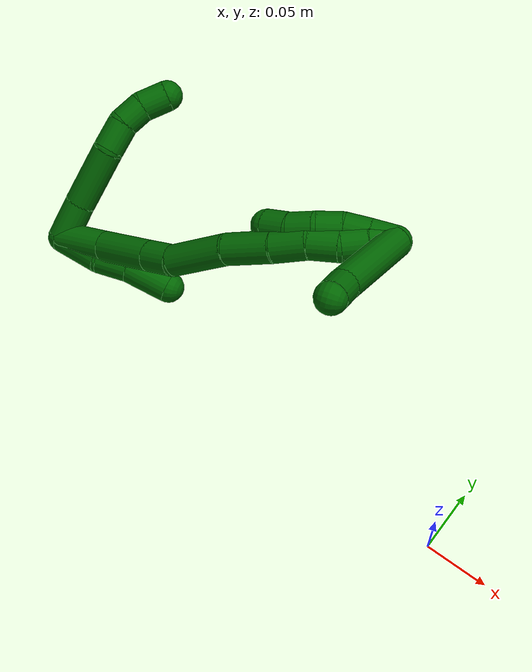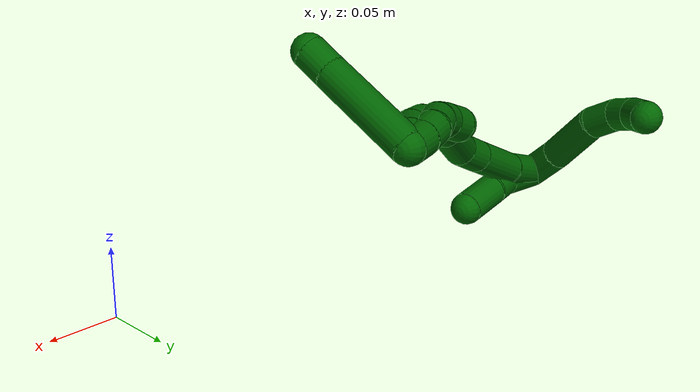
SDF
<sdf version="1.7">
 <world name="default">
  <model name="6">
   <static>0</static>
   <link name="6">
    <collision name="collision-cylinder-e_1_2_8">
     <pose>0.015543 -0.003151 0.003655 0.711426 1.26977 0.534253</pose>
     <geometry><cylinder><radius>0.0125</radius><length>0.032549</length></cylinder></geometry>
     <surface>
      <friction><ode><mu>1.16</mu><mu2>1.16</mu2><slip1>0</slip1><slip2>0</slip2></ode></friction>
      <contact><ode><kp>1e+06</kp><kd>1</kd><max_vel>0</max_vel><min_depth>0.001</min_depth></ode></contact>
     </surface>
    </collision>
    <visual name="visual-cylinder-e_1_2_8">
     <pose>0.015543 -0.003151 0.003655 0.711426 1.26977 0.534253</pose>
     <geometry><cylinder><radius>0.0125</radius><length>0.032549</length></cylinder></geometry>
     <material><ambient>0 0.392157 0.003922 1</ambient></material>
    </visual>
    <collision name="collision-cylinder-e_2_8_9">
     <pose>0.055482 -0.009366 0.014247 0.415952 1.26941 0.308313</pose>
     <geometry><cylinder><radius>0.0125</radius><length>0.051097</length></cylinder></geometry>
     <surface>
      <friction><ode><mu>1.16</mu><mu2>1.16</mu2><slip1>0</slip1><slip2>0</slip2></ode></friction>
      <contact><ode><kp>1e+06</kp><kd>1</kd><max_vel>0</max_vel><min_depth>0.001</min_depth></ode></contact>
     </surface>
    </collision>
    <visual name="visual-cylinder-e_2_8_9">
     <pose>0.055482 -0.009366 0.014247 0.415952 1.26941 0.308313</pose>
     <geometry><cylinder><radius>0.0125</radius><length>0.051097</length></cylinder></geometry>
     <material><ambient>0 0.392157 0.003922 1</ambient></material>
    </visual>
    <collision name="collision-cylinder-e_3_9_10">
     <pose>0.090728 -0.01748 0.023559 1.13123 1.09568 0.739047</pose>
     <geometry><cylinder><radius>0.0125</radius><length>0.0244</length></cylinder></geometry>
     <surface>
      <friction><ode><mu>1.16</mu><mu2>1.16</mu2><slip1>0</slip1><slip2>0</slip2></ode></friction>
      <contact><ode><kp>1e+06</kp><kd>1</kd><max_vel>0</max_vel><min_depth>0.001</min_depth></ode></contact>
     </surface>
    </collision>
    <visual name="visual-cylinder-e_3_9_10">
     <pose>0.090728 -0.01748 0.023559 1.13123 1.09568 0.739047</pose>
     <geometry><cylinder><radius>0.0125</radius><length>0.0244</length></cylinder></geometry>
     <material><ambient>0 0.392157 0.003922 1</ambient></material>
    </visual>
    <collision name="collision-cylinder-e_4_10_11">
     <pose>0.108752 -0.027812 0.030563 0.851154 0.796109 0.37669</pose>
     <geometry><cylinder><radius>0.0125</radius><length>0.02008</length></cylinder></geometry>
     <surface>
      <friction><ode><mu>1.16</mu><mu2>1.16</mu2><slip1>0</slip1><slip2>0</slip2></ode></friction>
      <contact><ode><kp>1e+06</kp><kd>1</kd><max_vel>0</max_vel><min_depth>0.001</min_depth></ode></contact>
     </surface>
    </collision>
    <visual name="visual-cylinder-e_4_10_11">
     <pose>0.108752 -0.027812 0.030563 0.851154 0.796109 0.37669</pose>
     <geometry><cylinder><radius>0.0125</radius><length>0.02008</length></cylinder></geometry>
     <material><ambient>0 0.392157 0.003922 1</ambient></material>
    </visual>
    <collision name="collision-cylinder-e_5_11_6">
     <pose>0.121741 -0.038064 0.043009 0.566347 0.560485 0.167116</pose>
     <geometry><cylinder><radius>0.0125</radius><length>0.021874</length></cylinder></geometry>
     <surface>
      <friction><ode><mu>1.16</mu><mu2>1.16</mu2><slip1>0</slip1><slip2>0</slip2></ode></friction>
      <contact><ode><kp>1e+06</kp><kd>1</kd><max_vel>0</max_vel><min_depth>0.001</min_depth></ode></contact>
     </surface>
    </collision>
    <visual name="visual-cylinder-e_5_11_6">
     <pose>0.121741 -0.038064 0.043009 0.566347 0.560485 0.167116</pose>
     <geometry><cylinder><radius>0.0125</radius><length>0.021874</length></cylinder></geometry>
     <material><ambient>0 0.392157 0.003922 1</ambient></material>
    </visual>
    <collision name="collision-cylinder-e_1_2_12">
     <pose>-0.002153 0.003118 0.018592 -0.166165 -0.113696 0.009478</pose>
     <geometry><cylinder><radius>0.0125</radius><length>0.037948</length></cylinder></geometry>
     <surface>
      <friction><ode><mu>1.16</mu><mu2>1.16</mu2><slip1>0</slip1><slip2>0</slip2></ode></friction>
      <contact><ode><kp>1e+06</kp><kd>1</kd><max_vel>0</max_vel><min_depth>0.001</min_depth></ode></contact>
     </surface>
    </collision>
    <visual name="visual-cylinder-e_1_2_12">
     <pose>-0.002153 0.003118 0.018592 -0.166165 -0.113696 0.009478</pose>
     <geometry><cylinder><radius>0.0125</radius><length>0.037948</length></cylinder></geometry>
     <material><ambient>0 0.392157 0.003922 1</ambient></material>
    </visual>
    <collision name="collision-cylinder-e_2_12_13">
     <pose>-0.004295 0.005158 0.050209 0.082558 0.000796 3.3e-05</pose>
     <geometry><cylinder><radius>0.0125</radius><length>0.02614</length></cylinder></geometry>
     <surface>
      <friction><ode><mu>1.16</mu><mu2>1.16</mu2><slip1>0</slip1><slip2>0</slip2></ode></friction>
      <contact><ode><kp>1e+06</kp><kd>1</kd><max_vel>0</max_vel><min_depth>0.001</min_depth></ode></contact>
     </surface>
    </collision>
    <visual name="visual-cylinder-e_2_12_13">
     <pose>-0.004295 0.005158 0.050209 0.082558 0.000796 3.3e-05</pose>
     <geometry><cylinder><radius>0.0125</radius><length>0.02614</length></cylinder></geometry>
     <material><ambient>0 0.392157 0.003922 1</ambient></material>
    </visual>
    <collision name="collision-cylinder-e_3_13_5">
     <pose>-0.007451 0.003266 0.08089 0.046092 -0.177255 -0.004096</pose>
     <geometry><cylinder><radius>0.0125</radius><length>0.035912</length></cylinder></geometry>
     <surface>
      <friction><ode><mu>1.16</mu><mu2>1.16</mu2><slip1>0</slip1><slip2>0</slip2></ode></friction>
      <contact><ode><kp>1e+06</kp><kd>1</kd><max_vel>0</max_vel><min_depth>0.001</min_depth></ode></contact>
     </surface>
    </collision>
    <visual name="visual-cylinder-e_3_13_5">
     <pose>-0.007451 0.003266 0.08089 0.046092 -0.177255 -0.004096</pose>
     <geometry><cylinder><radius>0.0125</radius><length>0.035912</length></cylinder></geometry>
     <material><ambient>0 0.392157 0.003922 1</ambient></material>
    </visual>
    <collision name="collision-cylinder-e_1_2_14">
     <pose>0.004325 0.004652 0.0208 -0.220049 0.200183 -0.022188</pose>
     <geometry><cylinder><radius>0.0125</radius><length>0.043496</length></cylinder></geometry>
     <surface>
      <friction><ode><mu>1.16</mu><mu2>1.16</mu2><slip1>0</slip1><slip2>0</slip2></ode></friction>
      <contact><ode><kp>1e+06</kp><kd>1</kd><max_vel>0</max_vel><min_depth>0.001</min_depth></ode></contact>
     </surface>
    </collision>
    <visual name="visual-cylinder-e_1_2_14">
     <pose>0.004325 0.004652 0.0208 -0.220049 0.200183 -0.022188</pose>
     <geometry><cylinder><radius>0.0125</radius><length>0.043496</length></cylinder></geometry>
     <material><ambient>0 0.392157 0.003922 1</ambient></material>
    </visual>
    <collision name="collision-cylinder-e_2_14_15">
     <pose>0.014859 0.017667 0.064259 -0.353533 0.251672 -0.045187</pose>
     <geometry><cylinder><radius>0.0125</radius><length>0.049877</length></cylinder></geometry>
     <surface>
      <friction><ode><mu>1.16</mu><mu2>1.16</mu2><slip1>0</slip1><slip2>0</slip2></ode></friction>
      <contact><ode><kp>1e+06</kp><kd>1</kd><max_vel>0</max_vel><min_depth>0.001</min_depth></ode></contact>
     </surface>
    </collision>
    <visual name="visual-cylinder-e_2_14_15">
     <pose>0.014859 0.017667 0.064259 -0.353533 0.251672 -0.045187</pose>
     <geometry><cylinder><radius>0.0125</radius><length>0.049877</length></cylinder></geometry>
     <material><ambient>0 0.392157 0.003922 1</ambient></material>
    </visual>
    <collision name="collision-cylinder-e_3_15_16">
     <pose>0.024303 0.030307 0.098086 -0.365835 0.264027 -0.049117</pose>
     <geometry><cylinder><radius>0.0125</radius><length>0.024777</length></cylinder></geometry>
     <surface>
      <friction><ode><mu>1.16</mu><mu2>1.16</mu2><slip1>0</slip1><slip2>0</slip2></ode></friction>
      <contact><ode><kp>1e+06</kp><kd>1</kd><max_vel>0</max_vel><min_depth>0.001</min_depth></ode></contact>
     </surface>
    </collision>
    <visual name="visual-cylinder-e_3_15_16">
     <pose>0.024303 0.030307 0.098086 -0.365835 0.264027 -0.049117</pose>
     <geometry><cylinder><radius>0.0125</radius><length>0.024777</length></cylinder></geometry>
     <material><ambient>0 0.392157 0.003922 1</ambient></material>
    </visual>
    <collision name="collision-cylinder-e_4_16_17">
     <pose>0.040907 0.038639 0.130687 -0.186918 0.54989 -0.052869</pose>
     <geometry><cylinder><radius>0.0125</radius><length>0.051171</length></cylinder></geometry>
     <surface>
      <friction><ode><mu>1.16</mu><mu2>1.16</mu2><slip1>0</slip1><slip2>0</slip2></ode></friction>
      <contact><ode><kp>1e+06</kp><kd>1</kd><max_vel>0</max_vel><min_depth>0.001</min_depth></ode></contact>
     </surface>
    </collision>
    <visual name="visual-cylinder-e_4_16_17">
     <pose>0.040907 0.038639 0.130687 -0.186918 0.54989 -0.052869</pose>
     <geometry><cylinder><radius>0.0125</radius><length>0.051171</length></cylinder></geometry>
     <material><ambient>0 0.392157 0.003922 1</ambient></material>
    </visual>
    <collision name="collision-cylinder-e_5_17_18">
     <pose>0.061705 0.044151 0.169898 -0.081849 0.394609 -0.016371</pose>
     <geometry><cylinder><radius>0.0125</radius><length>0.038642</length></cylinder></geometry>
     <surface>
      <friction><ode><mu>1.16</mu><mu2>1.16</mu2><slip1>0</slip1><slip2>0</slip2></ode></friction>
      <contact><ode><kp>1e+06</kp><kd>1</kd><max_vel>0</max_vel><min_depth>0.001</min_depth></ode></contact>
     </surface>
    </collision>
    <visual name="visual-cylinder-e_5_17_18">
     <pose>0.061705 0.044151 0.169898 -0.081849 0.394609 -0.016371</pose>
     <geometry><cylinder><radius>0.0125</radius><length>0.038642</length></cylinder></geometry>
     <material><ambient>0 0.392157 0.003922 1</ambient></material>
    </visual>
    <collision name="collision-cylinder-e_6_18_19">
     <pose>0.074721 0.045023 0.200446 0.045832 0.412033 0.00958</pose>
     <geometry><cylinder><radius>0.0125</radius><length>0.027905</length></cylinder></geometry>
     <surface>
      <friction><ode><mu>1.16</mu><mu2>1.16</mu2><slip1>0</slip1><slip2>0</slip2></ode></friction>
      <contact><ode><kp>1e+06</kp><kd>1</kd><max_vel>0</max_vel><min_depth>0.001</min_depth></ode></contact>
     </surface>
    </collision>
    <visual name="visual-cylinder-e_6_18_19">
     <pose>0.074721 0.045023 0.200446 0.045832 0.412033 0.00958</pose>
     <geometry><cylinder><radius>0.0125</radius><length>0.027905</length></cylinder></geometry>
     <material><ambient>0 0.392157 0.003922 1</ambient></material>
    </visual>
    <collision name="collision-cylinder-e_7_19_20">
     <pose>0.082664 0.043189 0.224545 0.109747 0.20381 0.011234</pose>
     <geometry><cylinder><radius>0.0125</radius><length>0.023274</length></cylinder></geometry>
     <surface>
      <friction><ode><mu>1.16</mu><mu2>1.16</mu2><slip1>0</slip1><slip2>0</slip2></ode></friction>
      <contact><ode><kp>1e+06</kp><kd>1</kd><max_vel>0</max_vel><min_depth>0.001</min_depth></ode></contact>
     </surface>
    </collision>
    <visual name="visual-cylinder-e_7_19_20">
     <pose>0.082664 0.043189 0.224545 0.109747 0.20381 0.011234</pose>
     <geometry><cylinder><radius>0.0125</radius><length>0.023274</length></cylinder></geometry>
     <material><ambient>0 0.392157 0.003922 1</ambient></material>
    </visual>
    <collision name="collision-cylinder-e_8_20_21">
     <pose>0.088007 0.037941 0.244697 0.425607 0.299144 0.065101</pose>
     <geometry><cylinder><radius>0.0125</radius><length>0.020277</length></cylinder></geometry>
     <surface>
      <friction><ode><mu>1.16</mu><mu2>1.16</mu2><slip1>0</slip1><slip2>0</slip2></ode></friction>
      <contact><ode><kp>1e+06</kp><kd>1</kd><max_vel>0</max_vel><min_depth>0.001</min_depth></ode></contact>
     </surface>
    </collision>
    <visual name="visual-cylinder-e_8_20_21">
     <pose>0.088007 0.037941 0.244697 0.425607 0.299144 0.065101</pose>
     <geometry><cylinder><radius>0.0125</radius><length>0.020277</length></cylinder></geometry>
     <material><ambient>0 0.392157 0.003922 1</ambient></material>
    </visual>
    <collision name="collision-cylinder-e_9_21_1">
     <pose>0.093157 0.029873 0.262722 0.416273 0.211679 0.044866</pose>
     <geometry><cylinder><radius>0.0125</radius><length>0.02058</length></cylinder></geometry>
     <surface>
      <friction><ode><mu>1.16</mu><mu2>1.16</mu2><slip1>0</slip1><slip2>0</slip2></ode></friction>
      <contact><ode><kp>1e+06</kp><kd>1</kd><max_vel>0</max_vel><min_depth>0.001</min_depth></ode></contact>
     </surface>
    </collision>
    <visual name="visual-cylinder-e_9_21_1">
     <pose>0.093157 0.029873 0.262722 0.416273 0.211679 0.044866</pose>
     <geometry><cylinder><radius>0.0125</radius><length>0.02058</length></cylinder></geometry>
     <material><ambient>0 0.392157 0.003922 1</ambient></material>
    </visual>
    <collision name="collision-cylinder-e_1_1_22">
     <pose>0.088464 0.063658 0.264758 -1.75787 -0.176101 0.212312</pose>
     <geometry><cylinder><radius>0.0125</radius><length>0.078261</length></cylinder></geometry>
     <surface>
      <friction><ode><mu>1.16</mu><mu2>1.16</mu2><slip1>0</slip1><slip2>0</slip2></ode></friction>
      <contact><ode><kp>1e+06</kp><kd>1</kd><max_vel>0</max_vel><min_depth>0.001</min_depth></ode></contact>
     </surface>
    </collision>
    <visual name="visual-cylinder-e_1_1_22">
     <pose>0.088464 0.063658 0.264758 -1.75787 -0.176101 0.212312</pose>
     <geometry><cylinder><radius>0.0125</radius><length>0.078261</length></cylinder></geometry>
     <material><ambient>0 0.392157 0.003922 1</ambient></material>
    </visual>
    <collision name="collision-cylinder-e_2_22_4">
     <pose>0.080578 0.112307 0.256864 -1.63818 -0.094949 0.101561</pose>
     <geometry><cylinder><radius>0.0125</radius><length>0.021739</length></cylinder></geometry>
     <surface>
      <friction><ode><mu>1.16</mu><mu2>1.16</mu2><slip1>0</slip1><slip2>0</slip2></ode></friction>
      <contact><ode><kp>1e+06</kp><kd>1</kd><max_vel>0</max_vel><min_depth>0.001</min_depth></ode></contact>
     </surface>
    </collision>
    <visual name="visual-cylinder-e_2_22_4">
     <pose>0.080578 0.112307 0.256864 -1.63818 -0.094949 0.101561</pose>
     <geometry><cylinder><radius>0.0125</radius><length>0.021739</length></cylinder></geometry>
     <material><ambient>0 0.392157 0.003922 1</ambient></material>
    </visual>
    <collision name="collision-cylinder-e_1_1_23">
     <pose>0.095169 0.026774 0.261971 -3.04455 -0.01498 0.306079</pose>
     <geometry><cylinder><radius>0.0125</radius><length>0.02</length></cylinder></geometry>
     <surface>
      <friction><ode><mu>1.16</mu><mu2>1.16</mu2><slip1>0</slip1><slip2>0</slip2></ode></friction>
      <contact><ode><kp>1e+06</kp><kd>1</kd><max_vel>0</max_vel><min_depth>0.001</min_depth></ode></contact>
     </surface>
    </collision>
    <visual name="visual-cylinder-e_1_1_23">
     <pose>0.095169 0.026774 0.261971 -3.04455 -0.01498 0.306079</pose>
     <geometry><cylinder><radius>0.0125</radius><length>0.02</length></cylinder></geometry>
     <material><ambient>0 0.392157 0.003922 1</ambient></material>
    </visual>
    <collision name="collision-cylinder-e_2_23_24">
     <pose>0.09492 0.029604 0.242195 -2.95436 -0.00993 0.10566</pose>
     <geometry><cylinder><radius>0.0125</radius><length>0.02</length></cylinder></geometry>
     <surface>
      <friction><ode><mu>1.16</mu><mu2>1.16</mu2><slip1>0</slip1><slip2>0</slip2></ode></friction>
      <contact><ode><kp>1e+06</kp><kd>1</kd><max_vel>0</max_vel><min_depth>0.001</min_depth></ode></contact>
     </surface>
    </collision>
    <visual name="visual-cylinder-e_2_23_24">
     <pose>0.09492 0.029604 0.242195 -2.95436 -0.00993 0.10566</pose>
     <geometry><cylinder><radius>0.0125</radius><length>0.02</length></cylinder></geometry>
     <material><ambient>0 0.392157 0.003922 1</ambient></material>
    </visual>
    <collision name="collision-cylinder-e_3_24_25">
     <pose>0.092769 0.034283 0.222997 -2.84957 -0.206641 1.22828</pose>
     <geometry><cylinder><radius>0.0125</radius><length>0.02</length></cylinder></geometry>
     <surface>
      <friction><ode><mu>1.16</mu><mu2>1.16</mu2><slip1>0</slip1><slip2>0</slip2></ode></friction>
      <contact><ode><kp>1e+06</kp><kd>1</kd><max_vel>0</max_vel><min_depth>0.001</min_depth></ode></contact>
     </surface>
    </collision>
    <visual name="visual-cylinder-e_3_24_25">
     <pose>0.092769 0.034283 0.222997 -2.84957 -0.206641 1.22828</pose>
     <geometry><cylinder><radius>0.0125</radius><length>0.02</length></cylinder></geometry>
     <material><ambient>0 0.392157 0.003922 1</ambient></material>
    </visual>
    <collision name="collision-cylinder-e_4_25_26">
     <pose>0.087299 0.037234 0.204227 -3.12743 -0.34891 3.06128</pose>
     <geometry><cylinder><radius>0.0125</radius><length>0.02</length></cylinder></geometry>
     <surface>
      <friction><ode><mu>1.16</mu><mu2>1.16</mu2><slip1>0</slip1><slip2>0</slip2></ode></friction>
      <contact><ode><kp>1e+06</kp><kd>1</kd><max_vel>0</max_vel><min_depth>0.001</min_depth></ode></contact>
     </surface>
    </collision>
    <visual name="visual-cylinder-e_4_25_26">
     <pose>0.087299 0.037234 0.204227 -3.12743 -0.34891 3.06128</pose>
     <geometry><cylinder><radius>0.0125</radius><length>0.02</length></cylinder></geometry>
     <material><ambient>0 0.392157 0.003922 1</ambient></material>
    </visual>
    <collision name="collision-cylinder-e_5_26_3">
     <pose>0.081353 0.03503 0.185442 2.89766 -0.255447 -1.61737</pose>
     <geometry><cylinder><radius>0.0125</radius><length>0.02</length></cylinder></geometry>
     <surface>
      <friction><ode><mu>1.16</mu><mu2>1.16</mu2><slip1>0</slip1><slip2>0</slip2></ode></friction>
      <contact><ode><kp>1e+06</kp><kd>1</kd><max_vel>0</max_vel><min_depth>0.001</min_depth></ode></contact>
     </surface>
    </collision>
    <visual name="visual-cylinder-e_5_26_3">
     <pose>0.081353 0.03503 0.185442 2.89766 -0.255447 -1.61737</pose>
     <geometry><cylinder><radius>0.0125</radius><length>0.02</length></cylinder></geometry>
     <material><ambient>0 0.392157 0.003922 1</ambient></material>
    </visual>
    <collision name="collision-sphere-3">
     <pose>0.078826 0.032693 0.176053 0 -0 0</pose>
     <geometry><sphere><radius>0.0125</radius></sphere></geometry>
     <surface>
      <friction><ode><mu>1.16</mu><mu2>1.16</mu2><slip1>0</slip1><slip2>0</slip2></ode></friction>
      <contact><ode><kp>1e+06</kp><kd>1</kd><max_vel>0</max_vel><min_depth>0.001</min_depth></ode></contact>
     </surface>
    </collision>
    <visual name="visual-sphere-3">
     <pose>0.078826 0.032693 0.176053 0 -0 0</pose>
     <geometry><sphere><radius>0.0125</radius></sphere></geometry>
     <material><ambient>0 0.392157 0.003922 1</ambient></material>
    </visual>
    <collision name="collision-sphere-26">
     <pose>0.08388 0.037367 0.194831 0 -0 0</pose>
     <geometry><sphere><radius>0.0125</radius></sphere></geometry>
     <surface>
      <friction><ode><mu>1.16</mu><mu2>1.16</mu2><slip1>0</slip1><slip2>0</slip2></ode></friction>
      <contact><ode><kp>1e+06</kp><kd>1</kd><max_vel>0</max_vel><min_depth>0.001</min_depth></ode></contact>
     </surface>
    </collision>
    <visual name="visual-sphere-26">
     <pose>0.08388 0.037367 0.194831 0 -0 0</pose>
     <geometry><sphere><radius>0.0125</radius></sphere></geometry>
     <material><ambient>0 0.392157 0.003922 1</ambient></material>
    </visual>
    <collision name="collision-sphere-25">
     <pose>0.090717 0.037101 0.213624 0 -0 0</pose>
     <geometry><sphere><radius>0.0125</radius></sphere></geometry>
     <surface>
      <friction><ode><mu>1.16</mu><mu2>1.16</mu2><slip1>0</slip1><slip2>0</slip2></ode></friction>
      <contact><ode><kp>1e+06</kp><kd>1</kd><max_vel>0</max_vel><min_depth>0.001</min_depth></ode></contact>
     </surface>
    </collision>
    <visual name="visual-sphere-25">
     <pose>0.090717 0.037101 0.213624 0 -0 0</pose>
     <geometry><sphere><radius>0.0125</radius></sphere></geometry>
     <material><ambient>0 0.392157 0.003922 1</ambient></material>
    </visual>
    <collision name="collision-sphere-24">
     <pose>0.094821 0.031465 0.23237 0 -0 0</pose>
     <geometry><sphere><radius>0.0125</radius></sphere></geometry>
     <surface>
      <friction><ode><mu>1.16</mu><mu2>1.16</mu2><slip1>0</slip1><slip2>0</slip2></ode></friction>
      <contact><ode><kp>1e+06</kp><kd>1</kd><max_vel>0</max_vel><min_depth>0.001</min_depth></ode></contact>
     </surface>
    </collision>
    <visual name="visual-sphere-24">
     <pose>0.094821 0.031465 0.23237 0 -0 0</pose>
     <geometry><sphere><radius>0.0125</radius></sphere></geometry>
     <material><ambient>0 0.392157 0.003922 1</ambient></material>
    </visual>
    <collision name="collision-sphere-23">
     <pose>0.095019 0.027743 0.252019 0 -0 0</pose>
     <geometry><sphere><radius>0.0125</radius></sphere></geometry>
     <surface>
      <friction><ode><mu>1.16</mu><mu2>1.16</mu2><slip1>0</slip1><slip2>0</slip2></ode></friction>
      <contact><ode><kp>1e+06</kp><kd>1</kd><max_vel>0</max_vel><min_depth>0.001</min_depth></ode></contact>
     </surface>
    </collision>
    <visual name="visual-sphere-23">
     <pose>0.095019 0.027743 0.252019 0 -0 0</pose>
     <geometry><sphere><radius>0.0125</radius></sphere></geometry>
     <material><ambient>0 0.392157 0.003922 1</ambient></material>
    </visual>
    <collision name="collision-sphere-4">
     <pose>0.079547 0.123103 0.256136 0 -0 0</pose>
     <geometry><sphere><radius>0.0125</radius></sphere></geometry>
     <surface>
      <friction><ode><mu>1.16</mu><mu2>1.16</mu2><slip1>0</slip1><slip2>0</slip2></ode></friction>
      <contact><ode><kp>1e+06</kp><kd>1</kd><max_vel>0</max_vel><min_depth>0.001</min_depth></ode></contact>
     </surface>
    </collision>
    <visual name="visual-sphere-4">
     <pose>0.079547 0.123103 0.256136 0 -0 0</pose>
     <geometry><sphere><radius>0.0125</radius></sphere></geometry>
     <material><ambient>0 0.392157 0.003922 1</ambient></material>
    </visual>
    <collision name="collision-sphere-22">
     <pose>0.081608 0.101511 0.257593 0 -0 0</pose>
     <geometry><sphere><radius>0.0125</radius></sphere></geometry>
     <surface>
      <friction><ode><mu>1.16</mu><mu2>1.16</mu2><slip1>0</slip1><slip2>0</slip2></ode></friction>
      <contact><ode><kp>1e+06</kp><kd>1</kd><max_vel>0</max_vel><min_depth>0.001</min_depth></ode></contact>
     </surface>
    </collision>
    <visual name="visual-sphere-22">
     <pose>0.081608 0.101511 0.257593 0 -0 0</pose>
     <geometry><sphere><radius>0.0125</radius></sphere></geometry>
     <material><ambient>0 0.392157 0.003922 1</ambient></material>
    </visual>
    <collision name="collision-sphere-1">
     <pose>0.095319 0.025805 0.271923 0 -0 0</pose>
     <geometry><sphere><radius>0.0125</radius></sphere></geometry>
     <surface>
      <friction><ode><mu>1.16</mu><mu2>1.16</mu2><slip1>0</slip1><slip2>0</slip2></ode></friction>
      <contact><ode><kp>1e+06</kp><kd>1</kd><max_vel>0</max_vel><min_depth>0.001</min_depth></ode></contact>
     </surface>
    </collision>
    <visual name="visual-sphere-1">
     <pose>0.095319 0.025805 0.271923 0 -0 0</pose>
     <geometry><sphere><radius>0.0125</radius></sphere></geometry>
     <material><ambient>0 0.392157 0.003922 1</ambient></material>
    </visual>
    <collision name="collision-sphere-21">
     <pose>0.090995 0.033941 0.253521 0 -0 0</pose>
     <geometry><sphere><radius>0.0125</radius></sphere></geometry>
     <surface>
      <friction><ode><mu>1.16</mu><mu2>1.16</mu2><slip1>0</slip1><slip2>0</slip2></ode></friction>
      <contact><ode><kp>1e+06</kp><kd>1</kd><max_vel>0</max_vel><min_depth>0.001</min_depth></ode></contact>
     </surface>
    </collision>
    <visual name="visual-sphere-21">
     <pose>0.090995 0.033941 0.253521 0 -0 0</pose>
     <geometry><sphere><radius>0.0125</radius></sphere></geometry>
     <material><ambient>0 0.392157 0.003922 1</ambient></material>
    </visual>
    <collision name="collision-sphere-6">
     <pose>0.127555 -0.043034 0.050826 0 -0 0</pose>
     <geometry><sphere><radius>0.0125</radius></sphere></geometry>
     <surface>
      <friction><ode><mu>1.16</mu><mu2>1.16</mu2><slip1>0</slip1><slip2>0</slip2></ode></friction>
      <contact><ode><kp>1e+06</kp><kd>1</kd><max_vel>0</max_vel><min_depth>0.001</min_depth></ode></contact>
     </surface>
    </collision>
    <visual name="visual-sphere-6">
     <pose>0.127555 -0.043034 0.050826 0 -0 0</pose>
     <geometry><sphere><radius>0.0125</radius></sphere></geometry>
     <material><ambient>0 0.392157 0.003922 1</ambient></material>
    </visual>
    <collision name="collision-sphere-11">
     <pose>0.115927 -0.033094 0.035192 0 -0 0</pose>
     <geometry><sphere><radius>0.0125</radius></sphere></geometry>
     <surface>
      <friction><ode><mu>1.16</mu><mu2>1.16</mu2><slip1>0</slip1><slip2>0</slip2></ode></friction>
      <contact><ode><kp>1e+06</kp><kd>1</kd><max_vel>0</max_vel><min_depth>0.001</min_depth></ode></contact>
     </surface>
    </collision>
    <visual name="visual-sphere-11">
     <pose>0.115927 -0.033094 0.035192 0 -0 0</pose>
     <geometry><sphere><radius>0.0125</radius></sphere></geometry>
     <material><ambient>0 0.392157 0.003922 1</ambient></material>
    </visual>
    <collision name="collision-sphere-10">
     <pose>0.101577 -0.022531 0.025934 0 -0 0</pose>
     <geometry><sphere><radius>0.0125</radius></sphere></geometry>
     <surface>
      <friction><ode><mu>1.16</mu><mu2>1.16</mu2><slip1>0</slip1><slip2>0</slip2></ode></friction>
      <contact><ode><kp>1e+06</kp><kd>1</kd><max_vel>0</max_vel><min_depth>0.001</min_depth></ode></contact>
     </surface>
    </collision>
    <visual name="visual-sphere-10">
     <pose>0.101577 -0.022531 0.025934 0 -0 0</pose>
     <geometry><sphere><radius>0.0125</radius></sphere></geometry>
     <material><ambient>0 0.392157 0.003922 1</ambient></material>
    </visual>
    <collision name="collision-sphere-9">
     <pose>0.079879 -0.01243 0.021184 0 -0 0</pose>
     <geometry><sphere><radius>0.0125</radius></sphere></geometry>
     <surface>
      <friction><ode><mu>1.16</mu><mu2>1.16</mu2><slip1>0</slip1><slip2>0</slip2></ode></friction>
      <contact><ode><kp>1e+06</kp><kd>1</kd><max_vel>0</max_vel><min_depth>0.001</min_depth></ode></contact>
     </surface>
    </collision>
    <visual name="visual-sphere-9">
     <pose>0.079879 -0.01243 0.021184 0 -0 0</pose>
     <geometry><sphere><radius>0.0125</radius></sphere></geometry>
     <material><ambient>0 0.392157 0.003922 1</ambient></material>
    </visual>
    <collision name="collision-sphere-2">
     <geometry><sphere><radius>0.0125</radius></sphere></geometry>
     <surface>
      <friction><ode><mu>1.16</mu><mu2>1.16</mu2><slip1>0</slip1><slip2>0</slip2></ode></friction>
      <contact><ode><kp>1e+06</kp><kd>1</kd><max_vel>0</max_vel><min_depth>0.001</min_depth></ode></contact>
     </surface>
    </collision>
    <visual name="visual-sphere-2">
     <geometry><sphere><radius>0.0125</radius></sphere></geometry>
     <material><ambient>0 0.392157 0.003922 1</ambient></material>
    </visual>
    <collision name="collision-sphere-19">
     <pose>0.080309 0.044437 0.213217 0 -0 0</pose>
     <geometry><sphere><radius>0.0125</radius></sphere></geometry>
     <surface>
      <friction><ode><mu>1.16</mu><mu2>1.16</mu2><slip1>0</slip1><slip2>0</slip2></ode></friction>
      <contact><ode><kp>1e+06</kp><kd>1</kd><max_vel>0</max_vel><min_depth>0.001</min_depth></ode></contact>
     </surface>
    </collision>
    <visual name="visual-sphere-19">
     <pose>0.080309 0.044437 0.213217 0 -0 0</pose>
     <geometry><sphere><radius>0.0125</radius></sphere></geometry>
     <material><ambient>0 0.392157 0.003922 1</ambient></material>
    </visual>
    <collision name="collision-sphere-8">
     <pose>0.031085 -0.006301 0.00731 0 -0 0</pose>
     <geometry><sphere><radius>0.0125</radius></sphere></geometry>
     <surface>
      <friction><ode><mu>1.16</mu><mu2>1.16</mu2><slip1>0</slip1><slip2>0</slip2></ode></friction>
      <contact><ode><kp>1e+06</kp><kd>1</kd><max_vel>0</max_vel><min_depth>0.001</min_depth></ode></contact>
     </surface>
    </collision>
    <visual name="visual-sphere-8">
     <pose>0.031085 -0.006301 0.00731 0 -0 0</pose>
     <geometry><sphere><radius>0.0125</radius></sphere></geometry>
     <material><ambient>0 0.392157 0.003922 1</ambient></material>
    </visual>
    <collision name="collision-sphere-12">
     <pose>-0.004305 0.006236 0.037183 0 -0 0</pose>
     <geometry><sphere><radius>0.0125</radius></sphere></geometry>
     <surface>
      <friction><ode><mu>1.16</mu><mu2>1.16</mu2><slip1>0</slip1><slip2>0</slip2></ode></friction>
      <contact><ode><kp>1e+06</kp><kd>1</kd><max_vel>0</max_vel><min_depth>0.001</min_depth></ode></contact>
     </surface>
    </collision>
    <visual name="visual-sphere-12">
     <pose>-0.004305 0.006236 0.037183 0 -0 0</pose>
     <geometry><sphere><radius>0.0125</radius></sphere></geometry>
     <material><ambient>0 0.392157 0.003922 1</ambient></material>
    </visual>
    <collision name="collision-sphere-13">
     <pose>-0.004284 0.00408 0.063234 0 -0 0</pose>
     <geometry><sphere><radius>0.0125</radius></sphere></geometry>
     <surface>
      <friction><ode><mu>1.16</mu><mu2>1.16</mu2><slip1>0</slip1><slip2>0</slip2></ode></friction>
      <contact><ode><kp>1e+06</kp><kd>1</kd><max_vel>0</max_vel><min_depth>0.001</min_depth></ode></contact>
     </surface>
    </collision>
    <visual name="visual-sphere-13">
     <pose>-0.004284 0.00408 0.063234 0 -0 0</pose>
     <geometry><sphere><radius>0.0125</radius></sphere></geometry>
     <material><ambient>0 0.392157 0.003922 1</ambient></material>
    </visual>
    <collision name="collision-sphere-5">
     <pose>-0.010617 0.002452 0.098546 0 -0 0</pose>
     <geometry><sphere><radius>0.0125</radius></sphere></geometry>
     <surface>
      <friction><ode><mu>1.16</mu><mu2>1.16</mu2><slip1>0</slip1><slip2>0</slip2></ode></friction>
      <contact><ode><kp>1e+06</kp><kd>1</kd><max_vel>0</max_vel><min_depth>0.001</min_depth></ode></contact>
     </surface>
    </collision>
    <visual name="visual-sphere-5">
     <pose>-0.010617 0.002452 0.098546 0 -0 0</pose>
     <geometry><sphere><radius>0.0125</radius></sphere></geometry>
     <material><ambient>0 0.392157 0.003922 1</ambient></material>
    </visual>
    <collision name="collision-sphere-14">
     <pose>0.008649 0.009305 0.0416 0 -0 0</pose>
     <geometry><sphere><radius>0.0125</radius></sphere></geometry>
     <surface>
      <friction><ode><mu>1.16</mu><mu2>1.16</mu2><slip1>0</slip1><slip2>0</slip2></ode></friction>
      <contact><ode><kp>1e+06</kp><kd>1</kd><max_vel>0</max_vel><min_depth>0.001</min_depth></ode></contact>
     </surface>
    </collision>
    <visual name="visual-sphere-14">
     <pose>0.008649 0.009305 0.0416 0 -0 0</pose>
     <geometry><sphere><radius>0.0125</radius></sphere></geometry>
     <material><ambient>0 0.392157 0.003922 1</ambient></material>
    </visual>
    <collision name="collision-sphere-15">
     <pose>0.02107 0.026029 0.086918 0 -0 0</pose>
     <geometry><sphere><radius>0.0125</radius></sphere></geometry>
     <surface>
      <friction><ode><mu>1.16</mu><mu2>1.16</mu2><slip1>0</slip1><slip2>0</slip2></ode></friction>
      <contact><ode><kp>1e+06</kp><kd>1</kd><max_vel>0</max_vel><min_depth>0.001</min_depth></ode></contact>
     </surface>
    </collision>
    <visual name="visual-sphere-15">
     <pose>0.02107 0.026029 0.086918 0 -0 0</pose>
     <geometry><sphere><radius>0.0125</radius></sphere></geometry>
     <material><ambient>0 0.392157 0.003922 1</ambient></material>
    </visual>
    <collision name="collision-sphere-16">
     <pose>0.027536 0.034585 0.109254 0 -0 0</pose>
     <geometry><sphere><radius>0.0125</radius></sphere></geometry>
     <surface>
      <friction><ode><mu>1.16</mu><mu2>1.16</mu2><slip1>0</slip1><slip2>0</slip2></ode></friction>
      <contact><ode><kp>1e+06</kp><kd>1</kd><max_vel>0</max_vel><min_depth>0.001</min_depth></ode></contact>
     </surface>
    </collision>
    <visual name="visual-sphere-16">
     <pose>0.027536 0.034585 0.109254 0 -0 0</pose>
     <geometry><sphere><radius>0.0125</radius></sphere></geometry>
     <material><ambient>0 0.392157 0.003922 1</ambient></material>
    </visual>
    <collision name="collision-sphere-17">
     <pose>0.054277 0.042692 0.152121 0 -0 0</pose>
     <geometry><sphere><radius>0.0125</radius></sphere></geometry>
     <surface>
      <friction><ode><mu>1.16</mu><mu2>1.16</mu2><slip1>0</slip1><slip2>0</slip2></ode></friction>
      <contact><ode><kp>1e+06</kp><kd>1</kd><max_vel>0</max_vel><min_depth>0.001</min_depth></ode></contact>
     </surface>
    </collision>
    <visual name="visual-sphere-17">
     <pose>0.054277 0.042692 0.152121 0 -0 0</pose>
     <geometry><sphere><radius>0.0125</radius></sphere></geometry>
     <material><ambient>0 0.392157 0.003922 1</ambient></material>
    </visual>
    <collision name="collision-sphere-18">
     <pose>0.069133 0.045609 0.187674 0 -0 0</pose>
     <geometry><sphere><radius>0.0125</radius></sphere></geometry>
     <surface>
      <friction><ode><mu>1.16</mu><mu2>1.16</mu2><slip1>0</slip1><slip2>0</slip2></ode></friction>
      <contact><ode><kp>1e+06</kp><kd>1</kd><max_vel>0</max_vel><min_depth>0.001</min_depth></ode></contact>
     </surface>
    </collision>
    <visual name="visual-sphere-18">
     <pose>0.069133 0.045609 0.187674 0 -0 0</pose>
     <geometry><sphere><radius>0.0125</radius></sphere></geometry>
     <material><ambient>0 0.392157 0.003922 1</ambient></material>
    </visual>
    <collision name="collision-sphere-20">
     <pose>0.085019 0.041941 0.235873 0 -0 0</pose>
     <geometry><sphere><radius>0.0125</radius></sphere></geometry>
     <surface>
      <friction><ode><mu>1.16</mu><mu2>1.16</mu2><slip1>0</slip1><slip2>0</slip2></ode></friction>
      <contact><ode><kp>1e+06</kp><kd>1</kd><max_vel>0</max_vel><min_depth>0.001</min_depth></ode></contact>
     </surface>
    </collision>
    <visual name="visual-sphere-20">
     <pose>0.085019 0.041941 0.235873 0 -0 0</pose>
     <geometry><sphere><radius>0.0125</radius></sphere></geometry>
     <material><ambient>0 0.392157 0.003922 1</ambient></material>
    </visual>
    <inertial>
     <pose>0.055153 0.023756 0.130028 0 -0 0</pose>
     <mass>0.75</mass>
     <inertia><ixx>0.000139</ixx><ixy>0</ixy><ixz>0</ixz><iyy>9.5e-05</iyy><iyz>0</iyz><izz>-5e-05</izz></inertia>
    </inertial>
   </link>
   <pose>-0.384615 0.036376 0.013863 1.48123 -0.917772 1.88481</pose>
  </model>
 </world>
</sdf>
